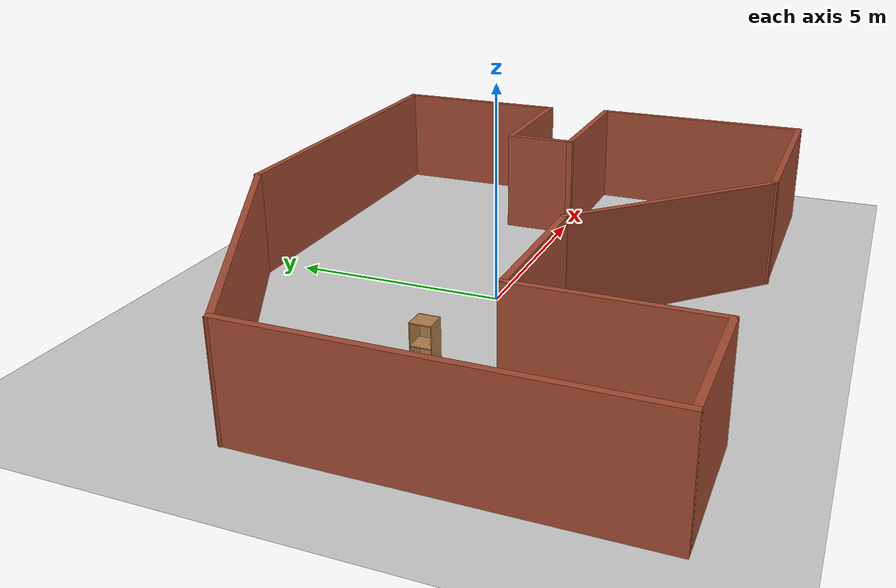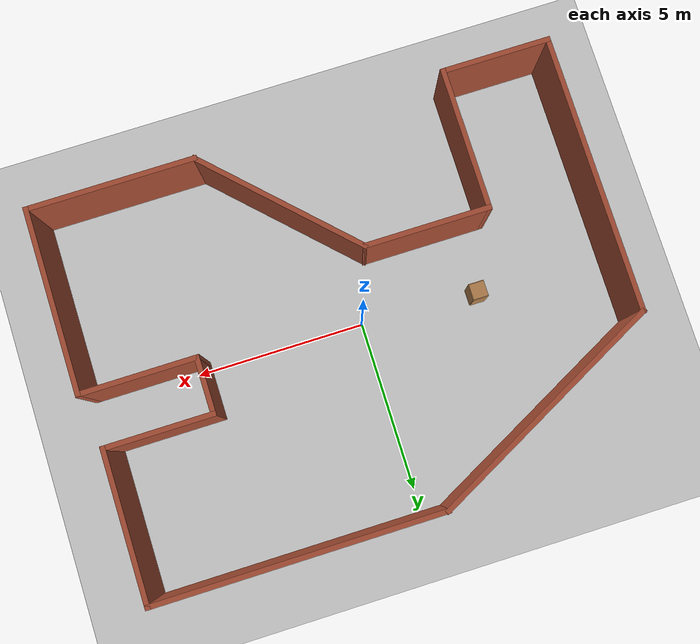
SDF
<sdf version="1.7">
 <world name="default">
  <light name="sun" type="directional">
   <pose>0 0 10 0 -0 0</pose>
   <diffuse>0.8 0.8 0.8 1</diffuse>
   <specular>0.2 0.2 0.2 1</specular>
   <attenuation>
    <range>1000</range>
    <constant>0.9</constant>
    <linear>0.01</linear>
    <quadratic>0.001</quadratic>
   </attenuation>
   <direction>-0.5 0.1 -0.9</direction>
   <spot><inner_angle>0</inner_angle><outer_angle>0</outer_angle><falloff>0</falloff></spot>
  </light>
  <model name="ground_plane">
   <static>1</static>
   <link name="link">
    <collision name="collision">
     <geometry><plane><normal>0 0 1</normal><size>100 100</size></plane></geometry>
     <surface>
      <contact><collide_bitmask>65535</collide_bitmask></contact>
      <friction><ode><mu>100</mu><mu2>50</mu2></ode></friction>
     </surface>
    </collision>
    <visual name="visual">
     <cast_shadows>0</cast_shadows>
     <geometry><plane><normal>0 0 1</normal><size>100 100</size></plane></geometry>
     <material>
      <script><uri>file://media/materials/scripts/gazebo.material</uri><name>Gazebo/Grey</name></script>
     </material>
    </visual>
   </link>
  </model>
  <gravity>0 0 -9.8</gravity>
  <magnetic_field>6e-06 2.3e-05 -4.2e-05</magnetic_field>
  <atmosphere type="adiabatic"/>
  <physics type="ode">
   <max_step_size>0.001</max_step_size>
   <real_time_factor>1</real_time_factor>
   <real_time_update_rate>1000</real_time_update_rate>
  </physics>
  <scene><ambient>0.4 0.4 0.4 1</ambient><background>0.7 0.7 0.7 1</background><shadows>1</shadows></scene>
  <spherical_coordinates>
   <surface_model>EARTH_WGS84</surface_model>
   <latitude_deg>0</latitude_deg>
   <longitude_deg>0</longitude_deg>
   <elevation>0</elevation>
   <heading_deg>0</heading_deg>
  </spherical_coordinates>
  <model name="botx_world">
   <pose>0.323182 -0.055349 0 0 -0 0</pose>
   <link name="Wall_1">
    <collision name="Wall_1_Collision">
     <geometry><box><size>8.25 0.15 2.5</size></box></geometry>
     <pose>0 0 1.25 0 -0 0</pose>
    </collision>
    <visual name="Wall_1_Visual">
     <pose>0 0 1.25 0 -0 0</pose>
     <geometry><box><size>8.25 0.15 2.5</size></box></geometry>
     <material>
      <script><uri>file://media/materials/scripts/gazebo.material</uri><name>Gazebo/Bricks</name></script>
      <ambient>1 1 1 1</ambient>
     </material>
     <meta><layer>0</layer></meta>
    </visual>
    <pose>-7.65341 -1.77159 0 0 -0 -1.5708</pose>
   </link>
   <link name="Wall_10">
    <collision name="Wall_10_Collision">
     <geometry><box><size>3.25 0.15 2.5</size></box></geometry>
     <pose>0 0 1.25 0 -0 0</pose>
    </collision>
    <visual name="Wall_10_Visual">
     <pose>0 0 1.25 0 -0 0</pose>
     <geometry><box><size>3.25 0.15 2.5</size></box></geometry>
     <material>
      <script><uri>file://media/materials/scripts/gazebo.material</uri><name>Gazebo/Bricks</name></script>
      <ambient>1 1 1 1</ambient>
     </material>
     <meta><layer>0</layer></meta>
    </visual>
    <pose>5.87961 1.44539 0 0 -0 0</pose>
   </link>
   <link name="Wall_11">
    <collision name="Wall_11_Collision">
     <geometry><box><size>4.5 0.15 2.5</size></box></geometry>
     <pose>0 0 1.25 0 -0 0</pose>
    </collision>
    <visual name="Wall_11_Visual">
     <pose>0 0 1.25 0 -0 0</pose>
     <geometry><box><size>4.5 0.15 2.5</size></box></geometry>
     <material>
      <script><uri>file://media/materials/scripts/gazebo.material</uri><name>Gazebo/Bricks</name></script>
      <ambient>1 1 1 1</ambient>
     </material>
     <meta><layer>0</layer></meta>
    </visual>
    <pose>7.42961 3.62039 0 0 -0 1.5708</pose>
   </link>
   <link name="Wall_12">
    <collision name="Wall_12_Collision">
     <geometry><box><size>8.5 0.15 2.5</size></box></geometry>
     <pose>0 0 1.25 0 -0 0</pose>
    </collision>
    <visual name="Wall_12_Visual">
     <pose>0 0 1.25 0 -0 0</pose>
     <geometry><box><size>8.5 0.15 2.5</size></box></geometry>
     <material>
      <script><uri>file://media/materials/scripts/gazebo.material</uri><name>Gazebo/Bricks</name></script>
      <ambient>1 1 1 1</ambient>
     </material>
     <meta><layer>0</layer></meta>
    </visual>
    <pose>3.25461 5.79539 0 0 -0 3.14159</pose>
   </link>
   <link name="Wall_13">
    <collision name="Wall_13_Collision">
     <geometry><box><size>7.74623 0.15 2.5</size></box></geometry>
     <pose>0 0 1.25 0 -0 0</pose>
    </collision>
    <visual name="Wall_13_Visual">
     <pose>0 0 1.25 0 -0 0</pose>
     <geometry><box><size>7.74623 0.15 2.5</size></box></geometry>
     <material>
      <script><uri>file://media/materials/scripts/gazebo.material</uri><name>Gazebo/Bricks</name></script>
      <ambient>1 1 1 1</ambient>
     </material>
     <meta><layer>0</layer></meta>
    </visual>
    <pose>-4.2869 4.0369 0 0 -0 -2.66023</pose>
   </link>
   <link name="Wall_2">
    <collision name="Wall_2_Collision">
     <geometry><box><size>3.25 0.15 2.5</size></box></geometry>
     <pose>0 0 1.25 0 -0 0</pose>
    </collision>
    <visual name="Wall_2_Visual">
     <pose>0 0 1.25 0 -0 0</pose>
     <geometry><box><size>3.25 0.15 2.5</size></box></geometry>
     <material>
      <script><uri>file://media/materials/scripts/gazebo.material</uri><name>Gazebo/Bricks</name></script>
      <ambient>1 1 1 1</ambient>
     </material>
     <meta><layer>0</layer></meta>
    </visual>
    <pose>-6.10341 -5.82159 0 0 -0 0</pose>
   </link>
   <link name="Wall_3">
    <collision name="Wall_3_Collision">
     <geometry><box><size>4.25 0.15 2.5</size></box></geometry>
     <pose>0 0 1.25 0 -0 0</pose>
    </collision>
    <visual name="Wall_3_Visual">
     <pose>0 0 1.25 0 -0 0</pose>
     <geometry><box><size>4.25 0.15 2.5</size></box></geometry>
     <material>
      <script><uri>file://media/materials/scripts/gazebo.material</uri><name>Gazebo/Bricks</name></script>
      <ambient>1 1 1 1</ambient>
     </material>
     <meta><layer>0</layer></meta>
    </visual>
    <pose>-4.55341 -3.77159 0 0 -0 1.5708</pose>
   </link>
   <link name="Wall_4">
    <collision name="Wall_4_Collision">
     <geometry><box><size>3.75 0.15 2.5</size></box></geometry>
     <pose>0 0 1.25 0 -0 0</pose>
    </collision>
    <visual name="Wall_4_Visual">
     <pose>0 0 1.25 0 -0 0</pose>
     <geometry><box><size>3.75 0.15 2.5</size></box></geometry>
     <material>
      <script><uri>file://media/materials/scripts/gazebo.material</uri><name>Gazebo/Bricks</name></script>
      <ambient>1 1 1 1</ambient>
     </material>
     <meta><layer>0</layer></meta>
    </visual>
    <pose>-2.75341 -1.72159 0 0 -0 0</pose>
   </link>
   <link name="Wall_5">
    <collision name="Wall_5_Collision">
     <geometry><box><size>5.5 0.15 2.5</size></box></geometry>
     <pose>0 0 1.25 0 -0 0</pose>
    </collision>
    <visual name="Wall_5_Visual">
     <pose>0 0 1.25 0 -0 0</pose>
     <geometry><box><size>5.5 0.15 2.5</size></box></geometry>
     <material>
      <script><uri>file://media/materials/scripts/gazebo.material</uri><name>Gazebo/Bricks</name></script>
      <ambient>1 1 1 1</ambient>
     </material>
     <meta><layer>0</layer></meta>
    </visual>
    <pose>0.938101 -3.6131 0 0 -0 -0.785398</pose>
   </link>
   <link name="Wall_6">
    <collision name="Wall_6_Collision">
     <geometry><box><size>5 0.15 2.5</size></box></geometry>
     <pose>0 0 1.25 0 -0 0</pose>
    </collision>
    <visual name="Wall_6_Visual">
     <pose>0 0 1.25 0 -0 0</pose>
     <geometry><box><size>5 0.15 2.5</size></box></geometry>
     <material>
      <script><uri>file://media/materials/scripts/gazebo.material</uri><name>Gazebo/Bricks</name></script>
      <ambient>1 1 1 1</ambient>
     </material>
     <meta><layer>0</layer></meta>
    </visual>
    <pose>5.25461 -5.50461 0 0 -0 0</pose>
   </link>
   <link name="Wall_7">
    <collision name="Wall_7_Collision">
     <geometry><box><size>5.5 0.15 2.5</size></box></geometry>
     <pose>0 0 1.25 0 -0 0</pose>
    </collision>
    <visual name="Wall_7_Visual">
     <pose>0 0 1.25 0 -0 0</pose>
     <geometry><box><size>5.5 0.15 2.5</size></box></geometry>
     <material>
      <script><uri>file://media/materials/scripts/gazebo.material</uri><name>Gazebo/Bricks</name></script>
      <ambient>1 1 1 1</ambient>
     </material>
     <meta><layer>0</layer></meta>
    </visual>
    <pose>7.67961 -2.82961 0 0 -0 1.5708</pose>
   </link>
   <link name="Wall_8">
    <collision name="Wall_8_Collision">
     <geometry><box><size>3.5 0.15 2.5</size></box></geometry>
     <pose>0 0 1.25 0 -0 0</pose>
    </collision>
    <visual name="Wall_8_Visual">
     <pose>0 0 1.25 0 -0 0</pose>
     <geometry><box><size>3.5 0.15 2.5</size></box></geometry>
     <material>
      <script><uri>file://media/materials/scripts/gazebo.material</uri><name>Gazebo/Bricks</name></script>
      <ambient>1 1 1 1</ambient>
     </material>
     <meta><layer>0</layer></meta>
    </visual>
    <pose>6.00461 -0.154611 0 0 -0 3.14159</pose>
   </link>
   <link name="Wall_9">
    <collision name="Wall_9_Collision">
     <geometry><box><size>1.75 0.15 2.5</size></box></geometry>
     <pose>0 0 1.25 0 -0 0</pose>
    </collision>
    <visual name="Wall_9_Visual">
     <pose>0 0 1.25 0 -0 0</pose>
     <geometry><box><size>1.75 0.15 2.5</size></box></geometry>
     <material>
      <script><uri>file://media/materials/scripts/gazebo.material</uri><name>Gazebo/Bricks</name></script>
      <ambient>1 1 1 1</ambient>
     </material>
     <meta><layer>0</layer></meta>
    </visual>
    <pose>4.32961 0.645389 0 0 -0 1.5708</pose>
   </link>
   <static>1</static>
  </model>
  <model name="cabinet">
   <static>1</static>
   <link name="cabinet_bottom_plate">
    <inertial>
     <pose>0 0 -1 0 -0 0</pose>
     <inertia><ixx>2.05</ixx><ixy>0</ixy><ixz>0</ixz><iyy>2.05</iyy><iyz>0</iyz><izz>2.05</izz></inertia>
     <mass>25</mass>
    </inertial>
    <collision name="cabinet_bottom_plate_geom">
     <pose>0 0 0.01 0 -0 0</pose>
     <geometry><box><size>0.45 0.45 0.02</size></box></geometry>
    </collision>
    <visual name="cabinet_bottom_plate_geom_visual">
     <pose>0 0 0.01 0 -0 0</pose>
     <geometry><box><size>0.45 0.45 0.02</size></box></geometry>
     <material>
      <script><uri>file://media/materials/scripts/gazebo.material</uri><name>Gazebo/Wood</name></script>
     </material>
    </visual>
    <collision name="cabinet_bottom_plate_geom_cabinet_back_plate">
     <pose>0.235 0 0.51 0 -0 0</pose>
     <geometry><box><size>0.02 0.45 1.02</size></box></geometry>
    </collision>
    <visual name="cabinet_bottom_plate_geom_cabinet_back_plate_visual">
     <pose>0.235 0 0.51 0 -0 0</pose>
     <geometry><box><size>0.02 0.45 1.02</size></box></geometry>
     <material>
      <script><uri>file://media/materials/scripts/gazebo.material</uri><name>Gazebo/Wood</name></script>
     </material>
    </visual>
    <collision name="cabinet_bottom_plate_geom_cabinet_left_plate">
     <pose>0 0.235 0.51 0 -0 0</pose>
     <geometry><box><size>0.45 0.02 1.02</size></box></geometry>
    </collision>
    <visual name="cabinet_bottom_plate_geom_cabinet_left_plate_visual">
     <pose>0 0.235 0.51 0 -0 0</pose>
     <geometry><box><size>0.45 0.02 1.02</size></box></geometry>
     <material>
      <script><uri>file://media/materials/scripts/gazebo.material</uri><name>Gazebo/Wood</name></script>
     </material>
    </visual>
    <collision name="cabinet_bottom_plate_geom_cabinet_middle_plate">
     <pose>0 0 0.51 0 -0 0</pose>
     <geometry><box><size>0.45 0.45 0.02</size></box></geometry>
    </collision>
    <visual name="cabinet_bottom_plate_geom_cabinet_middle_plate_visual">
     <pose>0 0 0.51 0 -0 0</pose>
     <geometry><box><size>0.45 0.45 0.02</size></box></geometry>
     <material>
      <script><uri>file://media/materials/scripts/gazebo.material</uri><name>Gazebo/Wood</name></script>
     </material>
    </visual>
    <collision name="cabinet_bottom_plate_geom_cabinet_right_plate">
     <pose>0 -0.235 0.51 0 -0 0</pose>
     <geometry><box><size>0.45 0.02 1.02</size></box></geometry>
    </collision>
    <visual name="cabinet_bottom_plate_geom_cabinet_right_plate_visual">
     <pose>0 -0.235 0.51 0 -0 0</pose>
     <geometry><box><size>0.45 0.02 1.02</size></box></geometry>
     <material>
      <script><uri>file://media/materials/scripts/gazebo.material</uri><name>Gazebo/Wood</name></script>
     </material>
    </visual>
    <collision name="cabinet_bottom_plate_geom_cabinet_top_plate">
     <pose>0 0 1.01 0 -0 0</pose>
     <geometry><box><size>0.45 0.45 0.02</size></box></geometry>
    </collision>
    <visual name="cabinet_bottom_plate_geom_cabinet_top_plate_visual">
     <pose>0 0 1.01 0 -0 0</pose>
     <geometry><box><size>0.45 0.45 0.02</size></box></geometry>
     <material>
      <script><uri>file://media/materials/scripts/gazebo.material</uri><name>Gazebo/Wood</name></script>
     </material>
    </visual>
   </link>
   <pose>-3.45798 0.156408 0 0 -0 0</pose>
  </model>
 </world>
</sdf>
